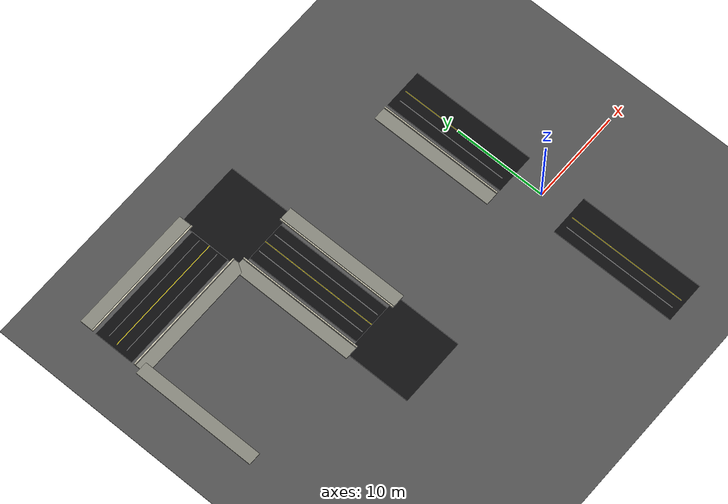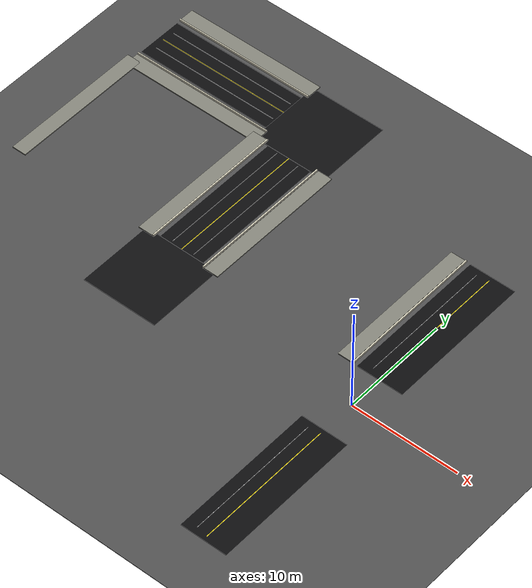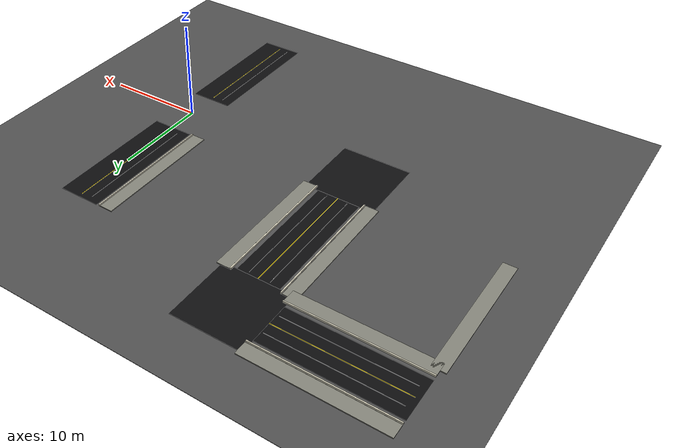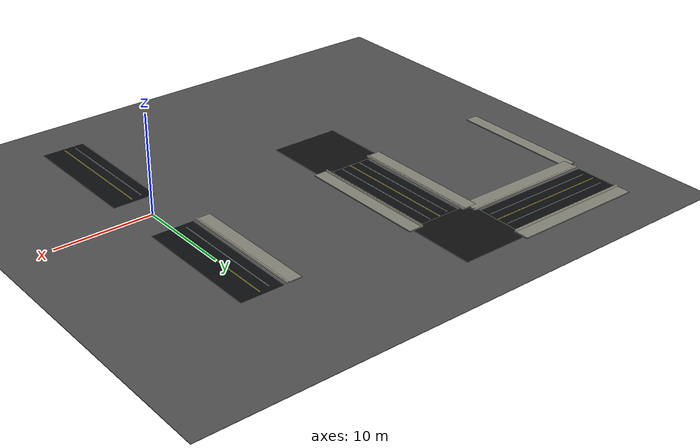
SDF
<sdf version="1.9">
 <world name="smart_city_world">
  <model name="ground">
   <static>true</static>
   <link name="link">
    <collision name="collision"><geometry><box><size>145 145 0.05</size></box></geometry></collision>
    <visual name="visual">
     <geometry><box><size>145 145 0.05</size></box></geometry>
     <material><ambient>0.30 0.30 0.30 1</ambient><diffuse>0.30 0.30 0.30 1</diffuse></material>
    </visual>
   </link>
  </model>
  <model name="road_e5">
   <static>true</static>
   <pose>-30.000 20.000 0.018 0 0 0.000000</pose>
   <link name="link">
    <collision name="collision"><geometry><box><size>13.600 4.350 0.030</size></box></geometry></collision>
    <visual name="visual">
     <geometry><box><size>13.600 4.350 0.030</size></box></geometry>
     <material><ambient>0.045 0.047 0.05 1</ambient><diffuse>0.045 0.047 0.05 1</diffuse></material>
    </visual>
   </link>
  </model>
  <model name="center_line_e5">
   <static>true</static>
   <pose>-30.000 20.000 0.052 0 0 0.000000</pose>
   <link name="link">
    <visual name="visual">
     <geometry><box><size>12.800 0.070 0.010</size></box></geometry>
     <material><ambient>1 0.86 0.05 1</ambient><diffuse>1 0.86 0.05 1</diffuse></material>
    </visual>
   </link>
  </model>
  <model name="sidewalk_e5_L">
   <static>true</static>
   <pose>-30.000 23.350 0.075 0 0 0.000000</pose>
   <link name="link">
    <visual name="visual">
     <geometry><box><size>13.600 1.350 0.100</size></box></geometry>
     <material><ambient>0.5 0.5 0.46 1</ambient><diffuse>0.5 0.5 0.46 1</diffuse></material>
    </visual>
   </link>
  </model>
  <model name="curb_e5_L">
   <static>true</static>
   <pose>-30.000 22.550 0.130 0 0 0.000000</pose>
   <link name="link">
    <visual name="visual">
     <geometry><box><size>13.600 0.120 0.180</size></box></geometry>
     <material><ambient>0.8 0.78 0.7 1</ambient><diffuse>0.8 0.78 0.7 1</diffuse></material>
    </visual>
   </link>
  </model>
  <model name="edge_line_e5_L">
   <static>true</static>
   <pose>-30.000 21.080 0.054 0 0 0.000000</pose>
   <link name="link">
    <visual name="visual">
     <geometry><box><size>12.400 0.035 0.010</size></box></geometry>
     <material><ambient>0.85 0.85 0.85 1</ambient><diffuse>0.85 0.85 0.85 1</diffuse></material>
    </visual>
   </link>
  </model>
  <model name="sidewalk_e5_R">
   <static>true</static>
   <pose>-30.000 16.650 0.075 0 0 0.000000</pose>
   <link name="link">
    <visual name="visual">
     <geometry><box><size>13.600 1.350 0.100</size></box></geometry>
     <material><ambient>0.5 0.5 0.46 1</ambient><diffuse>0.5 0.5 0.46 1</diffuse></material>
    </visual>
   </link>
  </model>
  <model name="curb_e5_R">
   <static>true</static>
   <pose>-30.000 17.450 0.130 0 0 0.000000</pose>
   <link name="link">
    <visual name="visual">
     <geometry><box><size>13.600 0.120 0.180</size></box></geometry>
     <material><ambient>0.8 0.78 0.7 1</ambient><diffuse>0.8 0.78 0.7 1</diffuse></material>
    </visual>
   </link>
  </model>
  <model name="edge_line_e5_R">
   <static>true</static>
   <pose>-30.000 18.920 0.054 0 0 0.000000</pose>
   <link name="link">
    <visual name="visual">
     <geometry><box><size>12.400 0.035 0.010</size></box></geometry>
     <material><ambient>0.85 0.85 0.85 1</ambient><diffuse>0.85 0.85 0.85 1</diffuse></material>
    </visual>
   </link>
  </model>
  <model name="sidewalk_e22_L">
   <static>true</static>
   <pose>-36.650 10.000 0.075 0 0 -1.570796</pose>
   <link name="link">
    <visual name="visual">
     <geometry><box><size>13.600 1.350 0.100</size></box></geometry>
     <material><ambient>0.5 0.5 0.46 1</ambient><diffuse>0.5 0.5 0.46 1</diffuse></material>
    </visual>
   </link>
  </model>
  <model name="road_e26">
   <static>true</static>
   <pose>-20.000 10.000 0.018 0 0 -1.570796</pose>
   <link name="link">
    <collision name="collision"><geometry><box><size>13.600 4.350 0.030</size></box></geometry></collision>
    <visual name="visual">
     <geometry><box><size>13.600 4.350 0.030</size></box></geometry>
     <material><ambient>0.045 0.047 0.05 1</ambient><diffuse>0.045 0.047 0.05 1</diffuse></material>
    </visual>
   </link>
  </model>
  <model name="center_line_e26">
   <static>true</static>
   <pose>-20.000 10.000 0.052 0 0 -1.570796</pose>
   <link name="link">
    <visual name="visual">
     <geometry><box><size>12.800 0.070 0.010</size></box></geometry>
     <material><ambient>1 0.86 0.05 1</ambient><diffuse>1 0.86 0.05 1</diffuse></material>
    </visual>
   </link>
  </model>
  <model name="sidewalk_e26_L">
   <static>true</static>
   <pose>-16.650 10.000 0.075 0 0 -1.570796</pose>
   <link name="link">
    <visual name="visual">
     <geometry><box><size>13.600 1.350 0.100</size></box></geometry>
     <material><ambient>0.5 0.5 0.46 1</ambient><diffuse>0.5 0.5 0.46 1</diffuse></material>
    </visual>
   </link>
  </model>
  <model name="curb_e26_L">
   <static>true</static>
   <pose>-17.450 10.000 0.130 0 0 -1.570796</pose>
   <link name="link">
    <visual name="visual">
     <geometry><box><size>13.600 0.120 0.180</size></box></geometry>
     <material><ambient>0.8 0.78 0.7 1</ambient><diffuse>0.8 0.78 0.7 1</diffuse></material>
    </visual>
   </link>
  </model>
  <model name="edge_line_e26_L">
   <static>true</static>
   <pose>-18.920 10.000 0.054 0 0 -1.570796</pose>
   <link name="link">
    <visual name="visual">
     <geometry><box><size>12.400 0.035 0.010</size></box></geometry>
     <material><ambient>0.85 0.85 0.85 1</ambient><diffuse>0.85 0.85 0.85 1</diffuse></material>
    </visual>
   </link>
  </model>
  <model name="sidewalk_e26_R">
   <static>true</static>
   <pose>-23.350 10.000 0.075 0 0 -1.570796</pose>
   <link name="link">
    <visual name="visual">
     <geometry><box><size>13.600 1.350 0.100</size></box></geometry>
     <material><ambient>0.5 0.5 0.46 1</ambient><diffuse>0.5 0.5 0.46 1</diffuse></material>
    </visual>
   </link>
  </model>
  <model name="curb_e26_R">
   <static>true</static>
   <pose>-22.550 10.000 0.130 0 0 -1.570796</pose>
   <link name="link">
    <visual name="visual">
     <geometry><box><size>13.600 0.120 0.180</size></box></geometry>
     <material><ambient>0.8 0.78 0.7 1</ambient><diffuse>0.8 0.78 0.7 1</diffuse></material>
    </visual>
   </link>
  </model>
  <model name="edge_line_e26_R">
   <static>true</static>
   <pose>-21.080 10.000 0.054 0 0 -1.570796</pose>
   <link name="link">
    <visual name="visual">
     <geometry><box><size>12.400 0.035 0.010</size></box></geometry>
     <material><ambient>0.85 0.85 0.85 1</ambient><diffuse>0.85 0.85 0.85 1</diffuse></material>
    </visual>
   </link>
  </model>
  <model name="road_e30">
   <static>true</static>
   <pose>0.000 10.000 0.018 0 0 -1.570796</pose>
   <link name="link">
    <collision name="collision"><geometry><box><size>13.600 4.350 0.030</size></box></geometry></collision>
    <visual name="visual">
     <geometry><box><size>13.600 4.350 0.030</size></box></geometry>
     <material><ambient>0.045 0.047 0.05 1</ambient><diffuse>0.045 0.047 0.05 1</diffuse></material>
    </visual>
   </link>
  </model>
  <model name="center_line_e30">
   <static>true</static>
   <pose>0.000 10.000 0.052 0 0 -1.570796</pose>
   <link name="link">
    <visual name="visual">
     <geometry><box><size>12.800 0.070 0.010</size></box></geometry>
     <material><ambient>1 0.86 0.05 1</ambient><diffuse>1 0.86 0.05 1</diffuse></material>
    </visual>
   </link>
  </model>
  <model name="sidewalk_e30_R">
   <static>true</static>
   <pose>-3.350 10.000 0.075 0 0 -1.570796</pose>
   <link name="link">
    <visual name="visual">
     <geometry><box><size>13.600 1.350 0.100</size></box></geometry>
     <material><ambient>0.5 0.5 0.46 1</ambient><diffuse>0.5 0.5 0.46 1</diffuse></material>
    </visual>
   </link>
  </model>
  <model name="curb_e30_R">
   <static>true</static>
   <pose>-2.550 10.000 0.130 0 0 -1.570796</pose>
   <link name="link">
    <visual name="visual">
     <geometry><box><size>13.600 0.120 0.180</size></box></geometry>
     <material><ambient>0.8 0.78 0.7 1</ambient><diffuse>0.8 0.78 0.7 1</diffuse></material>
    </visual>
   </link>
  </model>
  <model name="edge_line_e30_R">
   <static>true</static>
   <pose>-1.080 10.000 0.054 0 0 -1.570796</pose>
   <link name="link">
    <visual name="visual">
     <geometry><box><size>12.400 0.035 0.010</size></box></geometry>
     <material><ambient>0.85 0.85 0.85 1</ambient><diffuse>0.85 0.85 0.85 1</diffuse></material>
    </visual>
   </link>
  </model>
  <model name="road_e31">
   <static>true</static>
   <pose>0.000 -10.000 0.018 0 0 -1.570796</pose>
   <link name="link">
    <collision name="collision"><geometry><box><size>13.600 4.350 0.030</size></box></geometry></collision>
    <visual name="visual">
     <geometry><box><size>13.600 4.350 0.030</size></box></geometry>
     <material><ambient>0.045 0.047 0.05 1</ambient><diffuse>0.045 0.047 0.05 1</diffuse></material>
    </visual>
   </link>
  </model>
  <model name="center_line_e31">
   <static>true</static>
   <pose>0.000 -10.000 0.052 0 0 -1.570796</pose>
   <link name="link">
    <visual name="visual">
     <geometry><box><size>12.800 0.070 0.010</size></box></geometry>
     <material><ambient>1 0.86 0.05 1</ambient><diffuse>1 0.86 0.05 1</diffuse></material>
    </visual>
   </link>
  </model>
  <model name="edge_line_e31_R">
   <static>true</static>
   <pose>-1.080 -10.000 0.054 0 0 -1.570796</pose>
   <link name="link">
    <visual name="visual">
     <geometry><box><size>12.400 0.035 0.010</size></box></geometry>
     <material><ambient>0.85 0.85 0.85 1</ambient><diffuse>0.85 0.85 0.85 1</diffuse></material>
    </visual>
   </link>
  </model>
  <model name="intersection_plate_n7">
   <static>true</static>
   <pose>-20.000 20.000 0.025 0 0 0.000000</pose>
   <link name="link">
    <collision name="collision"><geometry><box><size>7.200 7.200 0.035</size></box></geometry></collision>
    <visual name="visual">
     <geometry><box><size>7.200 7.200 0.035</size></box></geometry>
     <material><ambient>0.055 0.055 0.058 1</ambient><diffuse>0.055 0.055 0.058 1</diffuse></material>
    </visual>
   </link>
  </model>
  <model name="intersection_plate_n12">
   <static>true</static>
   <pose>-20.000 0.000 0.025 0 0 0.000000</pose>
   <link name="link">
    <collision name="collision"><geometry><box><size>7.200 7.200 0.035</size></box></geometry></collision>
    <visual name="visual">
     <geometry><box><size>7.200 7.200 0.035</size></box></geometry>
     <material><ambient>0.055 0.055 0.058 1</ambient><diffuse>0.055 0.055 0.058 1</diffuse></material>
    </visual>
   </link>
  </model>
 </world>
</sdf>
